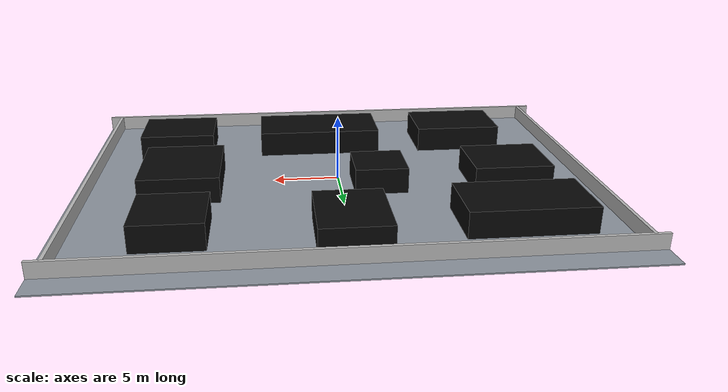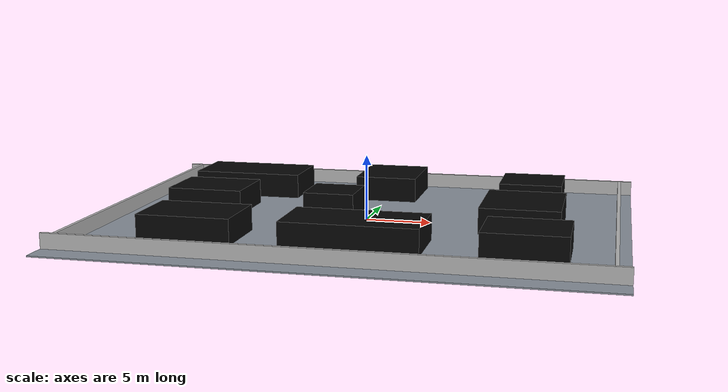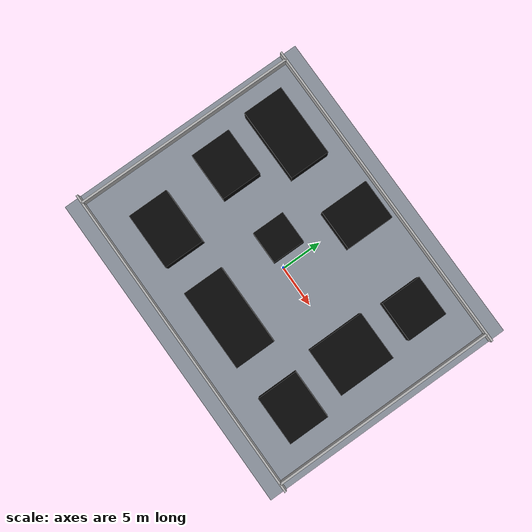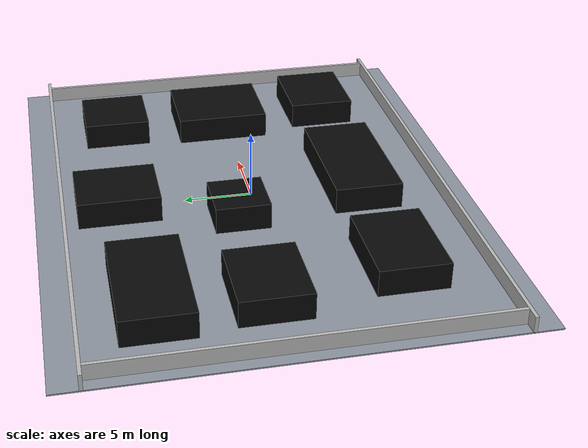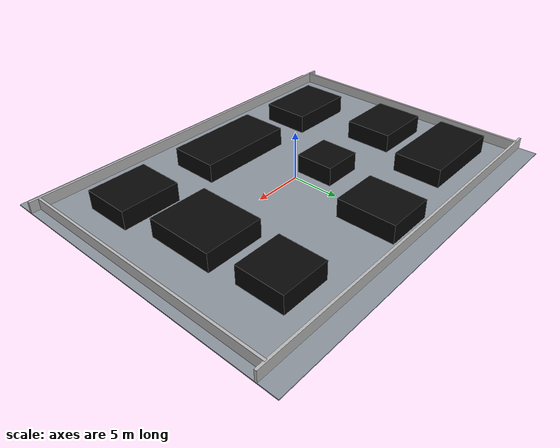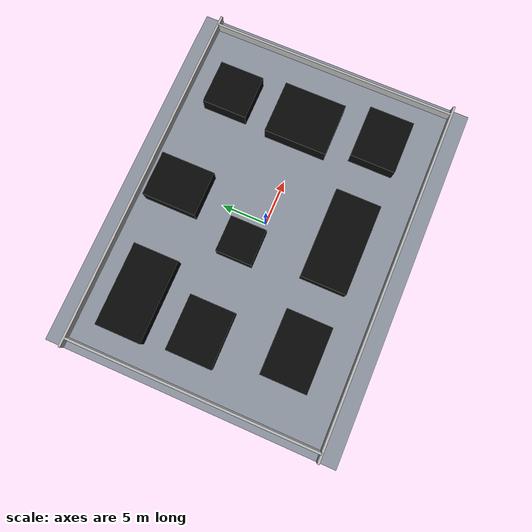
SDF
<?xml version='1.0'?>
<sdf version='1.9'>
  <world name='roboworks_world'>
    <physics name='default_physics' type='ode'>
      <max_step_size>0.001</max_step_size>
      <real_time_factor>1.0</real_time_factor>
      <real_time_update_rate>1000</real_time_update_rate>
    </physics>

    <plugin filename='gz-sim-physics-system' name='gz::sim::systems::Physics'/>
    <plugin filename='gz-sim-user-commands-system' name='gz::sim::systems::UserCommands'/>
    <plugin filename='gz-sim-sensors-system' name='gz::sim::systems::Sensors'/>
    <plugin filename='gz-sim-imu-system' name='gz::sim::systems::Imu'/>
    <plugin filename='gz-sim-scene-broadcaster-system' name='gz::sim::systems::SceneBroadcaster'/>

    <light name='sun' type='directional'>
      <pose>0 0 12 0 0 0</pose>
      <cast_shadows>true</cast_shadows>
      <diffuse>0.9 0.9 0.9 1</diffuse>
      <specular>0.2 0.2 0.2 1</specular>
      <direction>-0.5 0.1 -1</direction>
    </light>

    <model name='city_ground'>
      <static>true</static>
      <link name='ground_link'>
        <collision name='ground_collision'>
          <geometry><box><size>40 32 0.1</size></box></geometry>
        </collision>
        <visual name='ground_visual'>
          <geometry><box><size>40 32 0.1</size></box></geometry>
          <material>
            <ambient>0.55 0.58 0.62 1</ambient>
            <diffuse>0.55 0.58 0.62 1</diffuse>
          </material>
        </visual>
      </link>
    </model>

    <!-- Perimeter walls leave a 36 x 28 m drivable city area. -->
    <model name='city_wall_north'><static>true</static><pose>0 14 0.6 0 0 0</pose><link name='link'>
      <collision name='collision'><geometry><box><size>40 0.25 1.2</size></box></geometry></collision>
      <visual name='visual'><geometry><box><size>40 0.25 1.2</size></box></geometry></visual>
    </link></model>
    <model name='city_wall_south'><static>true</static><pose>0 -14 0.6 0 0 0</pose><link name='link'>
      <collision name='collision'><geometry><box><size>40 0.25 1.2</size></box></geometry></collision>
      <visual name='visual'><geometry><box><size>40 0.25 1.2</size></box></geometry></visual>
    </link></model>
    <model name='city_wall_east'><static>true</static><pose>19 0 0.6 0 0 0</pose><link name='link'>
      <collision name='collision'><geometry><box><size>0.25 28 1.2</size></box></geometry></collision>
      <visual name='visual'><geometry><box><size>0.25 28 1.2</size></box></geometry></visual>
    </link></model>
    <model name='city_wall_west'><static>true</static><pose>-19 0 0.6 0 0 0</pose><link name='link'>
      <collision name='collision'><geometry><box><size>0.25 28 1.2</size></box></geometry></collision>
      <visual name='visual'><geometry><box><size>0.25 28 1.2</size></box></geometry></visual>
    </link></model>

    <!-- Separate dark building blocks leave broad, connected road corridors between them. -->
    <model name='building_north_west'><static>true</static><pose>-12 9 1.0 0 0 0</pose><link name='link'>
      <collision name='collision'><geometry><box><size>9 5 2</size></box></geometry></collision>
      <visual name='visual'><geometry><box><size>9 5 2</size></box></geometry><material><ambient>0.03 0.03 0.03 1</ambient><diffuse>0.03 0.03 0.03 1</diffuse></material></visual>
    </link></model>
    <model name='building_north_center'><static>true</static><pose>0 10 1.0 0 0 0</pose><link name='link'>
      <collision name='collision'><geometry><box><size>5 6 2</size></box></geometry></collision>
      <visual name='visual'><geometry><box><size>5 6 2</size></box></geometry><material><ambient>0.03 0.03 0.03 1</ambient><diffuse>0.03 0.03 0.03 1</diffuse></material></visual>
    </link></model>
    <model name='building_north_east'><static>true</static><pose>12 9 1.0 0 0 0</pose><link name='link'>
      <collision name='collision'><geometry><box><size>5 5 2</size></box></geometry></collision>
      <visual name='visual'><geometry><box><size>5 5 2</size></box></geometry><material><ambient>0.03 0.03 0.03 1</ambient><diffuse>0.03 0.03 0.03 1</diffuse></material></visual>
    </link></model>

    <model name='building_mid_west'><static>true</static><pose>-13 1.5 1.0 0 0 0</pose><link name='link'>
      <collision name='collision'><geometry><box><size>6 5 2</size></box></geometry></collision>
      <visual name='visual'><geometry><box><size>6 5 2</size></box></geometry><material><ambient>0.03 0.03 0.03 1</ambient><diffuse>0.03 0.03 0.03 1</diffuse></material></visual>
    </link></model>
    <model name='building_mid_center'><static>true</static><pose>-3 1.5 1.0 0 0 0</pose><link name='link'>
      <collision name='collision'><geometry><box><size>4 4 2</size></box></geometry></collision>
      <visual name='visual'><geometry><box><size>4 4 2</size></box></geometry><material><ambient>0.03 0.03 0.03 1</ambient><diffuse>0.03 0.03 0.03 1</diffuse></material></visual>
    </link></model>
    <model name='building_mid_east'><static>true</static><pose>12 0.5 1.0 0 0 0</pose><link name='link'>
      <collision name='collision'><geometry><box><size>6 7 2</size></box></geometry></collision>
      <visual name='visual'><geometry><box><size>6 7 2</size></box></geometry><material><ambient>0.03 0.03 0.03 1</ambient><diffuse>0.03 0.03 0.03 1</diffuse></material></visual>
    </link></model>

    <model name='building_south_west'><static>true</static><pose>-11 -8 1.0 0 0 0</pose><link name='link'>
      <collision name='collision'><geometry><box><size>7 5 2</size></box></geometry></collision>
      <visual name='visual'><geometry><box><size>7 5 2</size></box></geometry><material><ambient>0.03 0.03 0.03 1</ambient><diffuse>0.03 0.03 0.03 1</diffuse></material></visual>
    </link></model>
    <model name='building_south_center'><static>true</static><pose>1 -8 1.0 0 0 0</pose><link name='link'>
      <collision name='collision'><geometry><box><size>10 5 2</size></box></geometry></collision>
      <visual name='visual'><geometry><box><size>10 5 2</size></box></geometry><material><ambient>0.03 0.03 0.03 1</ambient><diffuse>0.03 0.03 0.03 1</diffuse></material></visual>
    </link></model>
    <model name='building_south_east'><static>true</static><pose>13 -8 1.0 0 0 0</pose><link name='link'>
      <collision name='collision'><geometry><box><size>6 5 2</size></box></geometry></collision>
      <visual name='visual'><geometry><box><size>6 5 2</size></box></geometry><material><ambient>0.03 0.03 0.03 1</ambient><diffuse>0.03 0.03 0.03 1</diffuse></material></visual>
    </link></model>
  </world>
</sdf>
